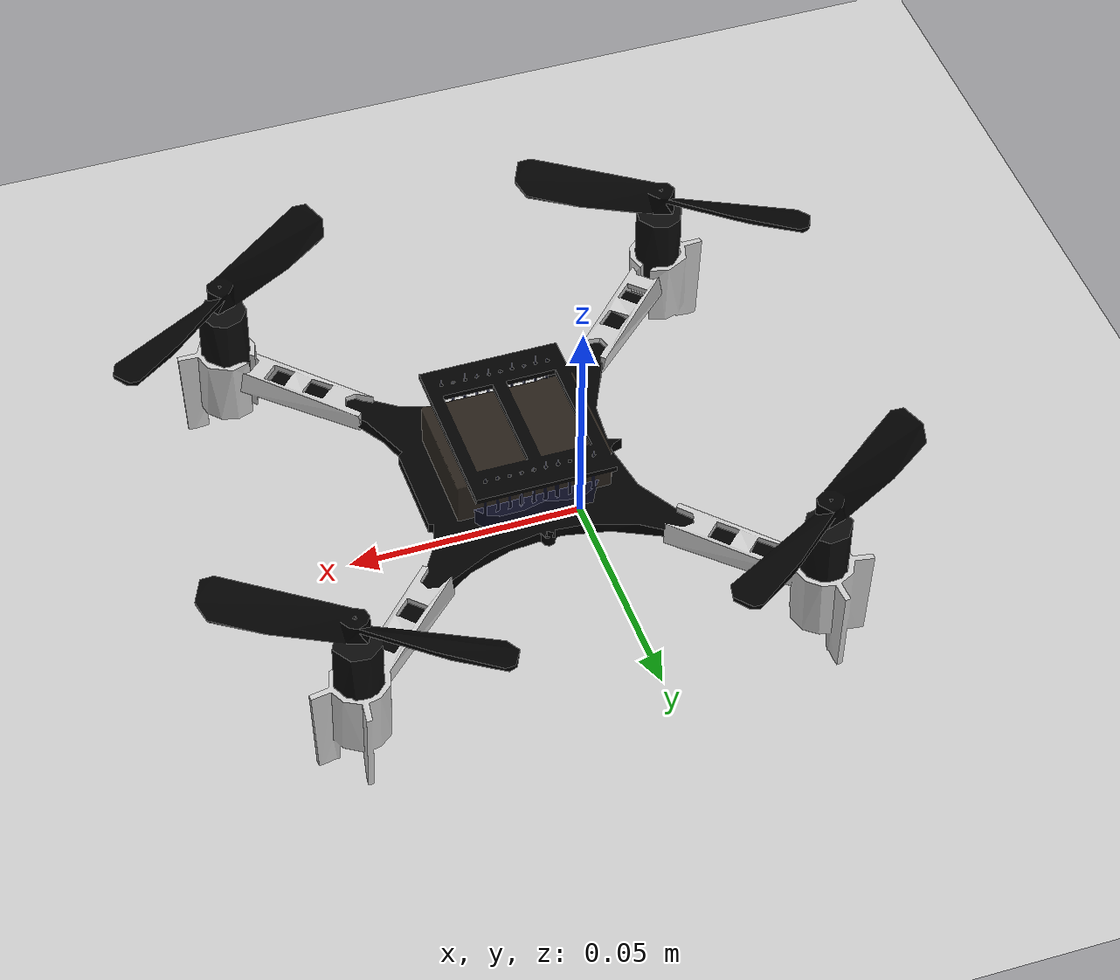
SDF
<?xml version="1.0"?>

<sdf version='1.9'>
  <world name='empty'>
    <physics name='1ms' type='ignored'>
      <max_step_size>0.001</max_step_size>
      <real_time_factor>1.0</real_time_factor>
    </physics>
    <plugin name='ignition::gazebo::systems::Physics' filename='ignition-gazebo-physics-system'/>
    <plugin name='ignition::gazebo::systems::UserCommands' filename='ignition-gazebo-user-commands-system'/>
    <plugin name='ignition::gazebo::systems::SceneBroadcaster' filename='ignition-gazebo-scene-broadcaster-system'/>
    <plugin
      filename="ignition-gazebo-user-commands-system"
      name="ignition::gazebo::systems::UserCommands">
    </plugin>
    <plugin
      filename="ignition-gazebo-sensors-system"
      name="ignition::gazebo::systems::Sensors">
      <render_engine>ogre2</render_engine>
    </plugin>
    <light name='sun' type='directional'>
      <cast_shadows>true</cast_shadows>
      <pose>0 0 10 0 0 0</pose>
      <diffuse>0.8 0.8 0.8 1</diffuse>
      <specular>0.2 0.2 0.2 1</specular>
      <attenuation>
        <range>1000</range>
        <constant>0.9</constant>
        <linear>0.01</linear>
        <quadratic>0.001</quadratic>
      </attenuation>
      <direction>-0.5 0.1 -0.9</direction>
      <spot>
        <inner_angle>0</inner_angle>
        <outer_angle>0</outer_angle>
        <falloff>0</falloff>
      </spot>
    </light>
    <gravity>0 0 -9.8</gravity>
    <magnetic_field>5.5645e-6 22.8758e-6 -42.3884e-6</magnetic_field>
    <atmosphere type='adiabatic'/>
    <scene>
      <ambient>0.4 0.4 0.4 1.0</ambient>
      <background>.7 .7 .7 1</background>
      <shadows>true</shadows>
    </scene>
    <model name='ground_plane'>
      <static>true</static>
      <link name='link'>
        <collision name='collision'>
          <geometry>
            <plane>
              <normal>0 0 1</normal>
              <size>100 100</size>
            </plane>
          </geometry>
          <surface>
            <friction>
              <ode/>
            </friction>
            <bounce/>
            <contact/>
          </surface>
        </collision>
        <visual name='visual'>
          <geometry>
            <plane>
              <normal>0 0 1</normal>
              <size>100 100</size>
            </plane>
          </geometry>
          <material>
            <ambient>0.8 0.8 0.8 1</ambient>
            <diffuse>0.8 0.8 0.8 1</diffuse>
            <specular>0.8 0.8 0.8 1</specular>
          </material>
          <plugin name='__default__' filename='__default__'/>
        </visual>
      </link>
      <plugin name='__default__' filename='__default__'/>
      <pose>0 0 0 0 -0 0</pose>
    </model>
    <include>
      <uri>model://crazyflie</uri>
      <name>crazyflie</name>
      <pose>0 0 0.015 0 0 0</pose>

    </include>
  </world>
</sdf>

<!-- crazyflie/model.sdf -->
<sdf version="1.8">
    <model name="crazyflie">
        <pose>0 0 0.0 0 0 0</pose>
        <link name="crazyflie/body">
        <inertial>
            <pose frame="">0 0 0 0 0 0</pose>
            <mass>0.025</mass>
            <inertia>
                <ixx>0.000016572</ixx>
                <ixy>0.000000831</ixy>
                <ixz>0.000000718</ixz>
                <iyy>0.000016656</iyy>
                <iyz>0.0000018</iyz>
                <izz>0.000029262</izz>
            </inertia>
        </inertial>
        <collision name="crazyflie/body_collision">
            <pose frame="">0 0 0 0 0 0</pose>
            <geometry>
                <box>
                    <size>0.10 0.10 0.03</size>
                </box>
            </geometry>
        </collision>
        <visual name="crazyflie/body_visual">
            <pose frame="">0 0 0 0 -0 0</pose>
            <geometry>
                <mesh>
                    <scale>1 1 1</scale>
                    <uri>model://crazyflie/meshes/crazyflie.dae</uri>
                </mesh>
            </geometry>
        </visual>
        </link>
    </model>
</sdf>
